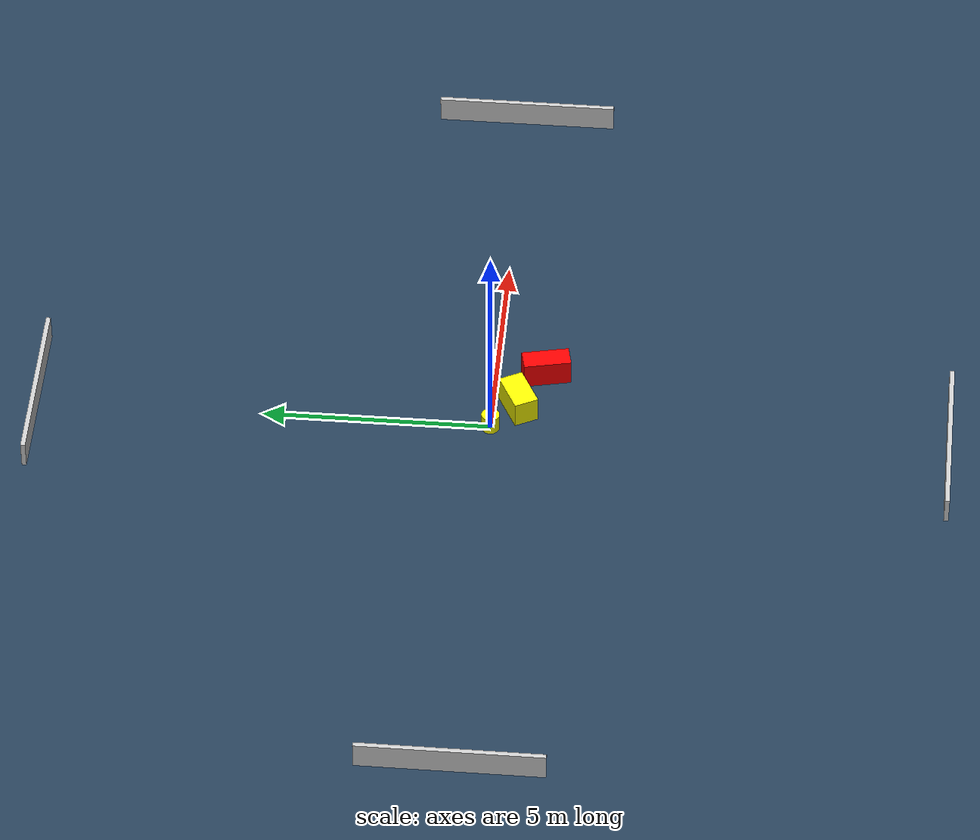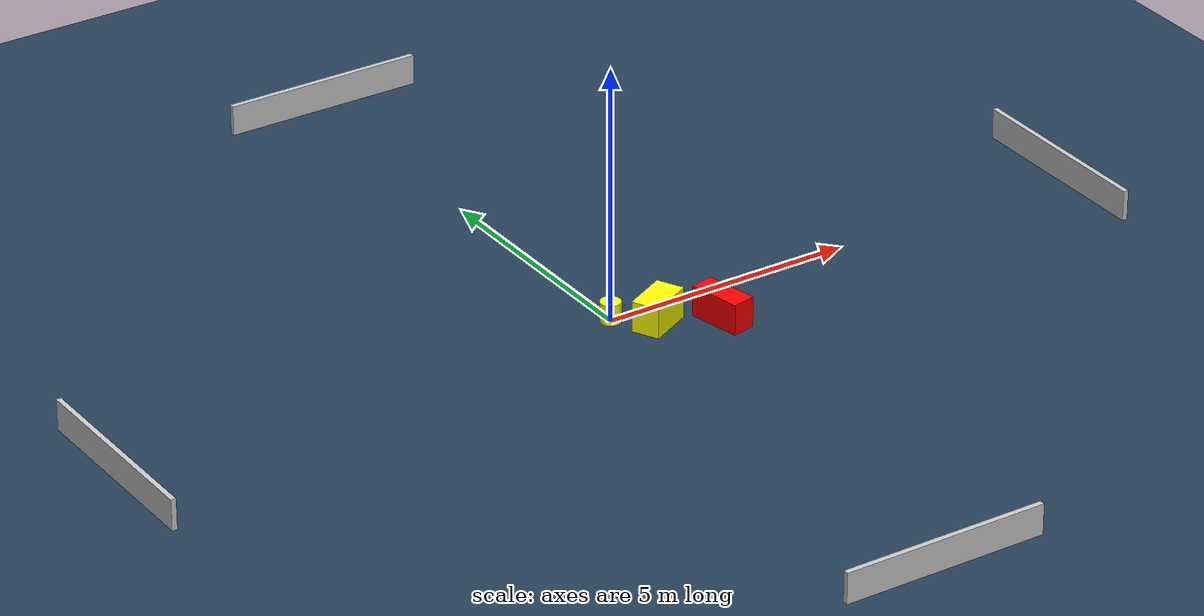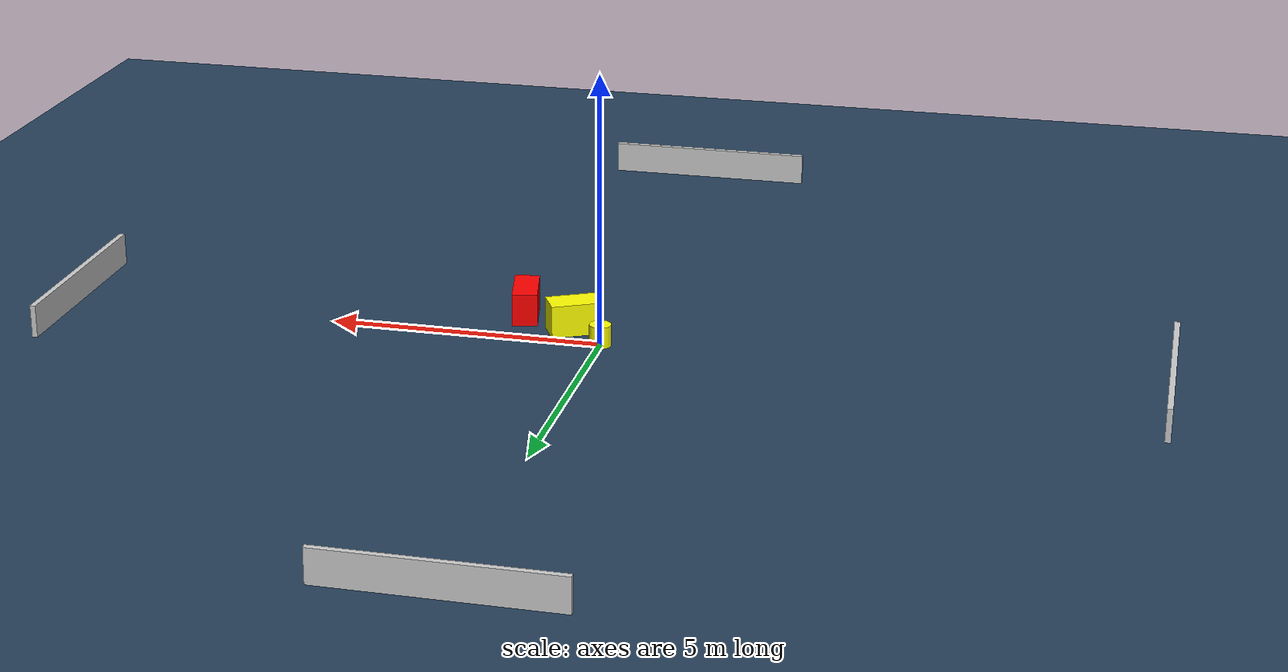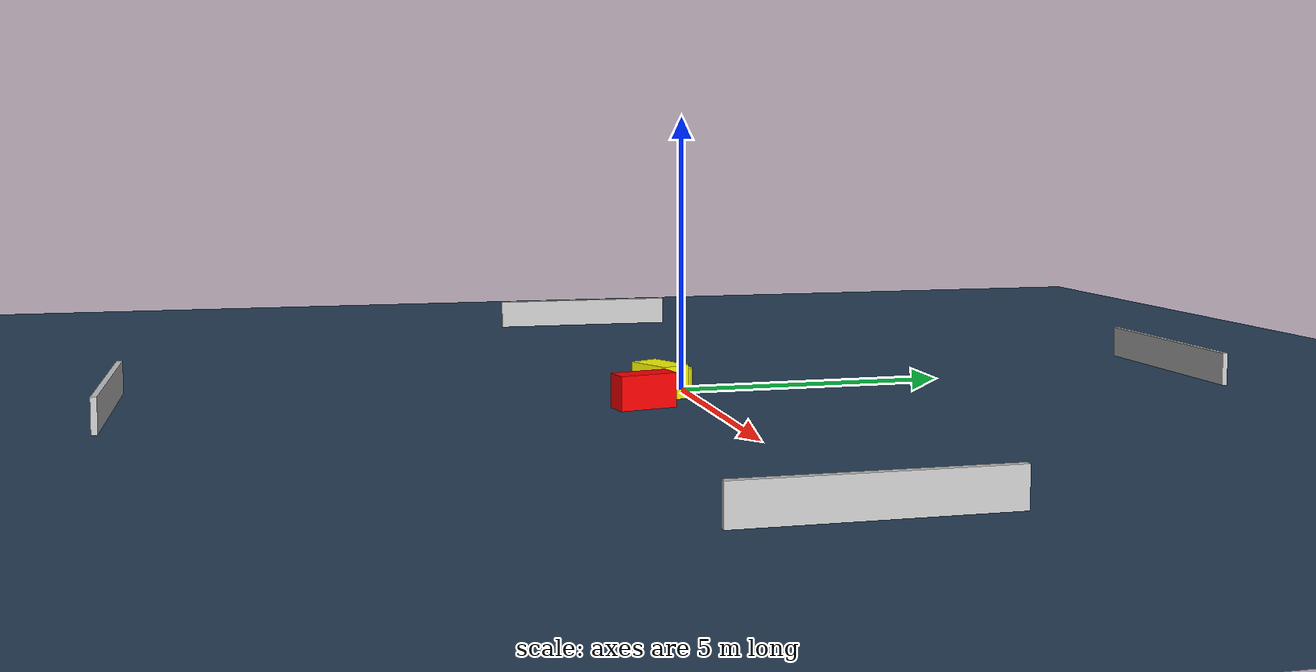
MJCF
<?xml version="1.0" ?>
<mujoco model="generated_environment">
  <option timestep="0.01" integrator="RK4" cone="elliptic"/>
  <default>
    <geom density="1"/>
  </default>
  <asset>
    <texture builtin="gradient" height="3072" name="skybox" rgb1="0.3 0.5 0.7" rgb2="0 0 0" type="skybox" width="512"/>
    <texture builtin="checker" height="300" name="groundplane" rgb1="0.2 0.3 0.4" rgb2="0.1 0.2 0.3" type="2d" width="300"/>
    <material name="groundplane" reflectance="0.2" texrepeat="5 5" texture="groundplane"/>
  </asset>
  <worldbody>
    <light dir="0 0 -1" directional="true" pos="0 0 1.5"/>
    <geom condim="3" friction="0.5 0.005 0.001" material="groundplane" name="floor" pos="0 0 0" size="0 0 0.05" type="plane"/>
    <body name="walls">
      <geom name="wall_1" condim="4" pos="-10.0 0.0 0.3" rgba="0.800000011920929 0.800000011920929 0.800000011920929 1.0" size="0.05 2.0 0.3" type="box"/>
      <geom name="wall_2" condim="4" pos="10.0 0.0 0.3" rgba="0.800000011920929 0.800000011920929 0.800000011920929 1.0" size="0.05 2.0 0.3" type="box"/>
      <geom name="wall_3" condim="4" pos="0.0 -10.0 0.3" rgba="0.800000011920929 0.800000011920929 0.800000011920929 1.0" size="2.0 0.05 0.3" type="box"/>
      <geom name="wall_4" condim="4" pos="0.0 10.0 0.3" rgba="0.800000011920929 0.800000011920929 0.800000011920929 1.0" size="2.0 0.05 0.3" type="box"/>
    </body>
    <body name="robot">
      <joint name="joint_x" type="slide" pos="0 0 0" axis="1 0 0"/>
      <joint name="joint_y" type="slide" pos="0 0 0" axis="0 1 0"/>
      <geom name="robot" type="cylinder" pos="0.0 0.0 0.2" size="0.2 0.2 0.0" mass="5.0" friction="1.0 0.005 0.0001" condim="4" rgba="1.0 1.0 0.0 1.0"/>
    </body>
    <body name="obstacle_1_movable">
      <geom name="obstacle_1_movable" condim="4" pos="0.6347804731948433 -0.5605946486648665 0.3" euler="0 0 27.201587393359652" friction="0.0 0.005 0.001" rgba="1.0 1.0 0.0 1.0" size="0.4616950638408517 0.273559987933066 0.3" type="box" mass="0.1"/>
      <joint type="free"/>
    </body>
    <body name="obstacle_2_static">
      <geom name="obstacle_2_static" condim="4" pos="1.6641720178556745 -1.093714229900602 0.3" euler="0 0 282.1404794058377" friction="0.0 0.005 0.001" rgba="1.0 0.0 0.0 1.0" size="0.5225525078612911 0.23049833150686075 0.3" type="box"/>
    </body>
  </worldbody>
  <actuator>
    <motor name="actuator_x" joint="joint_x" gear="1" ctrlrange="-1 1"/>
    <motor name="actuator_y" joint="joint_y" gear="1" ctrlrange="-1 1"/>
  </actuator>
</mujoco>
